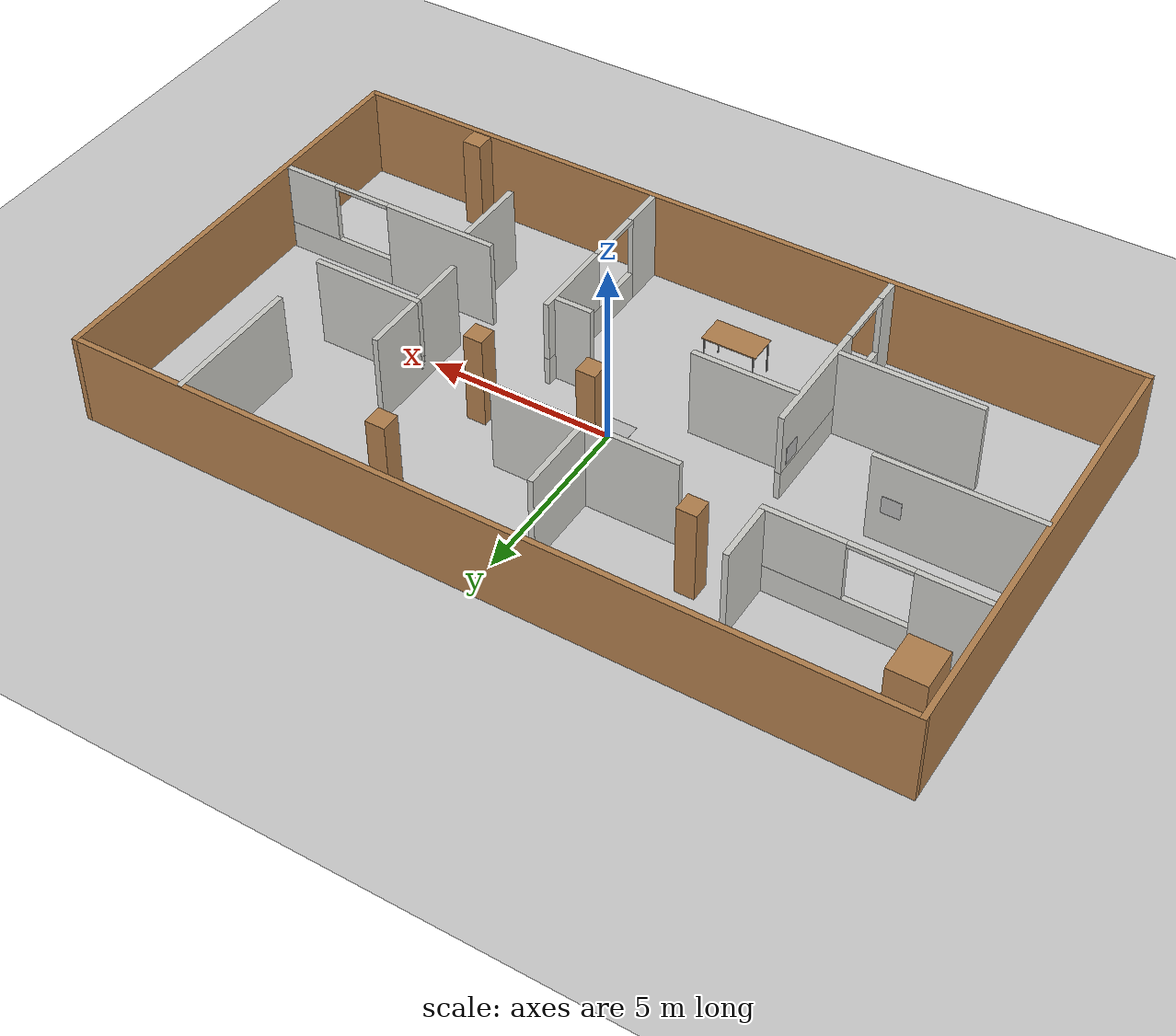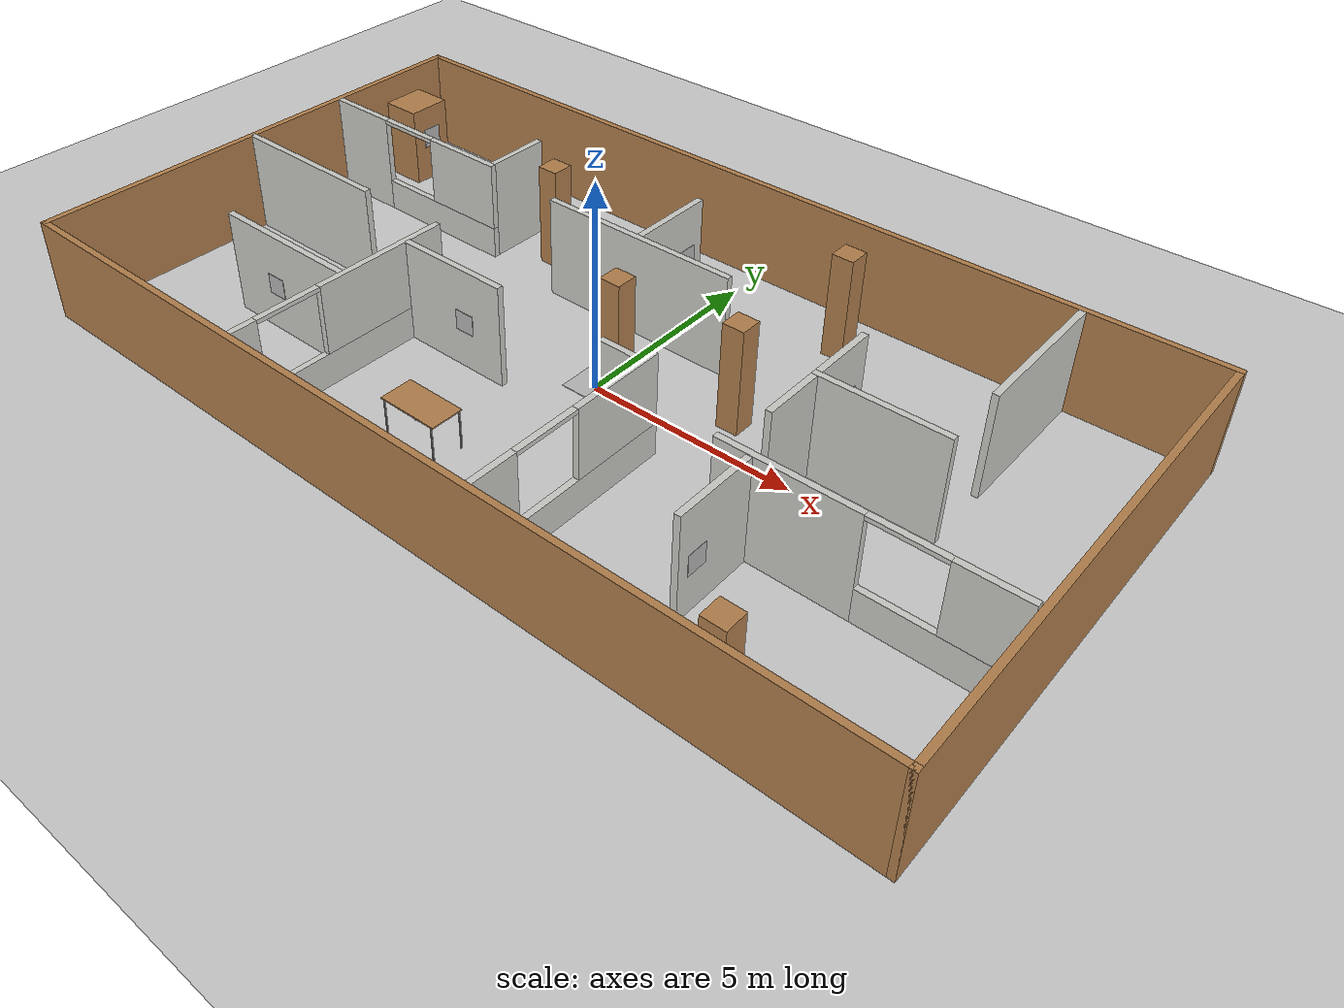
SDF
<sdf version="1.6">
 <world name="default">
  <light name="sun" type="directional">
   <pose>0 0 10 0 -0 0</pose>
   <diffuse>0.8 0.8 0.8 1</diffuse>
   <specular>0.2 0.2 0.2 1</specular>
   <attenuation>
    <range>1000</range>
    <constant>0.9</constant>
    <linear>0.01</linear>
    <quadratic>0.001</quadratic>
   </attenuation>
   <direction>-0.5 0.1 -0.9</direction>
  </light>
  <model name="ground_plane">
   <static>1</static>
   <link name="link">
    <collision name="collision">
     <geometry><plane><normal>0 0 1</normal><size>100 100</size></plane></geometry>
     <surface><friction><ode><mu>100</mu><mu2>50</mu2></ode></friction></surface>
    </collision>
    <visual name="visual">
     <cast_shadows>0</cast_shadows>
     <geometry><plane><normal>0 0 1</normal><size>100 100</size></plane></geometry>
     <material>
      <script><uri>file://media/materials/scripts/gazebo.material</uri><name>Gazebo/Grey</name></script>
     </material>
    </visual>
   </link>
  </model>
  <gravity>0 0 -9.8</gravity>
  <magnetic_field>6e-06 2.3e-05 -4.2e-05</magnetic_field>
  <atmosphere type="adiabatic"/>
  <plugin name="ros_interface_plugin" filename="librotors_gazebo_ros_interface_plugin.so"/>
  <physics name="default_physics" default="0" type="ode">
   <max_step_size>0.001</max_step_size>
   <real_time_factor>1</real_time_factor>
   <real_time_update_rate>1000</real_time_update_rate>
  </physics>
  <scene><ambient>0.4 0.4 0.4 1</ambient><background>0.7 0.7 0.7 1</background><shadows>1</shadows></scene>
  <spherical_coordinates>
   <surface_model>EARTH_WGS84</surface_model>
   <latitude_deg>0</latitude_deg>
   <longitude_deg>0</longitude_deg>
   <elevation>0</elevation>
   <heading_deg>0</heading_deg>
  </spherical_coordinates>
  <model name="20230316">
   <link name="Wall_14">
    <collision name="Wall_14_Collision">
     <geometry><box><size>12 0.15 2.5</size></box></geometry>
     <pose>0 0 1.25 0 -0 0</pose>
    </collision>
    <visual name="Wall_14_Visual">
     <pose>0 0 1.25 0 -0 0</pose>
     <geometry><box><size>12 0.15 2.5</size></box></geometry>
     <material>
      <script><uri>file://media/materials/scripts/gazebo.material</uri><name>Gazebo/Wood</name></script>
      <ambient>1 1 1 1</ambient>
     </material>
     <meta><layer>0</layer></meta>
    </visual>
    <pose>-10.925 0 0 0 -0 -1.5708</pose>
   </link>
   <link name="startflag">
    <pose>0 0 0.115 0 -0 0</pose>
    <inertial>
     <mass>0.39</mass>
     <inertia><ixx>0.00058</ixx><ixy>0</ixy><ixz>0</ixz><iyy>0.00058</iyy><iyz>0</iyz><izz>0.00019</izz></inertia>
    </inertial>
    <collision name="collision"><geometry><box><size>1 1 0.01</size></box></geometry></collision>
    <visual name="visual">
     <geometry><box><size>1 1 0.01</size></box></geometry>
     <material>
      <script>
       <uri>model://apriltag/materials/scripts</uri>
       <uri>model://apriltag/materials/textures</uri>
       <name>startflag/Diffuse</name>
      </script>
     </material>
    </visual>
   </link>
   <link name="Wall_15">
    <collision name="Wall_15_Collision">
     <geometry><box><size>22 0.15 2.5</size></box></geometry>
     <pose>0 0 1.25 0 -0 0</pose>
    </collision>
    <visual name="Wall_15_Visual">
     <pose>0 0 1.25 0 -0 0</pose>
     <geometry><box><size>22 0.15 2.5</size></box></geometry>
     <material>
      <script><uri>file://media/materials/scripts/gazebo.material</uri><name>Gazebo/Wood</name></script>
      <ambient>1 1 1 1</ambient>
     </material>
     <meta><layer>0</layer></meta>
    </visual>
    <pose>0 -5.925 0 0 -0 0</pose>
   </link>
   <link name="Wall_16">
    <collision name="Wall_16_Collision">
     <geometry><box><size>12 0.15 2.5</size></box></geometry>
     <pose>0 0 1.25 0 -0 0</pose>
    </collision>
    <visual name="Wall_16_Visual">
     <pose>0 0 1.25 0 -0 0</pose>
     <geometry><box><size>12 0.15 2.5</size></box></geometry>
     <material>
      <script><uri>file://media/materials/scripts/gazebo.material</uri><name>Gazebo/Wood</name></script>
      <ambient>1 1 1 1</ambient>
     </material>
     <meta><layer>0</layer></meta>
    </visual>
    <pose>10.925 0 0 0 -0 1.5708</pose>
   </link>
   <link name="Wall_17">
    <collision name="Wall_17_Collision">
     <geometry><box><size>22 0.15 2.5</size></box></geometry>
     <pose>0 0 1.25 0 -0 0</pose>
    </collision>
    <visual name="Wall_17_Visual">
     <pose>0 0 1.25 0 -0 0</pose>
     <geometry><box><size>22 0.15 2.5</size></box></geometry>
     <material>
      <script><uri>file://media/materials/scripts/gazebo.material</uri><name>Gazebo/Wood</name></script>
      <ambient>1 1 1 1</ambient>
     </material>
     <meta><layer>0</layer></meta>
    </visual>
    <pose>0 5.925 0 0 -0 3.14159</pose>
   </link>
   <link name="Wall_22">
    <collision name="Wall_22_Collision">
     <geometry><box><size>3.75 0.15 2.5</size></box></geometry>
     <pose>0 0 1.25 0 -0 0</pose>
    </collision>
    <visual name="Wall_22_Visual">
     <pose>0 0 1.25 0 -0 0</pose>
     <geometry><box><size>3.75 0.15 2.5</size></box></geometry>
     <material>
      <script><uri>file://media/materials/scripts/gazebo.material</uri><name>Gazebo/CeilingTiled</name></script>
      <ambient>0.921569 0.807843 0.615686 1</ambient>
     </material>
     <meta><layer>0</layer></meta>
    </visual>
    <pose>7.80154 4.0984 0 0 -0 -1.5708</pose>
   </link>
   <link name="Wall_25">
    <collision name="Wall_25_Collision">
     <geometry><box><size>3.25 0.15 2.5</size></box></geometry>
     <pose>0 0 1.25 0 -0 0</pose>
    </collision>
    <visual name="Wall_25_Visual">
     <pose>0 0 1.25 0 -0 0</pose>
     <geometry><box><size>3.25 0.15 2.5</size></box></geometry>
     <material>
      <script><uri>file://media/materials/scripts/gazebo.material</uri><name>Gazebo/CeilingTiled</name></script>
      <ambient>0.921569 0.807843 0.615686 1</ambient>
     </material>
     <meta><layer>0</layer></meta>
    </visual>
    <pose>4.95532 0.704173 0 0 -0 -1.5708</pose>
   </link>
   <link name="Wall_28">
    <collision name="Wall_28_Collision">
     <geometry><box><size>3 0.15 2.5</size></box></geometry>
     <pose>0 0 1.25 0 -0 0</pose>
    </collision>
    <visual name="Wall_28_Visual">
     <pose>0 0 1.25 0 -0 0</pose>
     <geometry><box><size>3 0.15 2.5</size></box></geometry>
     <material>
      <script><uri>file://media/materials/scripts/gazebo.material</uri><name>Gazebo/CeilingTiled</name></script>
      <ambient>0.921569 0.807843 0.615686 1</ambient>
     </material>
     <meta><layer>0</layer></meta>
    </visual>
    <pose>6.38032 0.631561 0 0 -0 0</pose>
   </link>
   <link name="Wall_30">
    <collision name="Wall_30_Collision">
     <geometry><box><size>2.25 0.15 2.5</size></box></geometry>
     <pose>0 0 1.25 0 -0 0</pose>
    </collision>
    <visual name="Wall_30_Visual">
     <pose>0 0 1.25 0 -0 0</pose>
     <geometry><box><size>2.25 0.15 2.5</size></box></geometry>
     <material>
      <script><uri>file://media/materials/scripts/gazebo.material</uri><name>Gazebo/CeilingTiled</name></script>
      <ambient>0.921569 0.807843 0.615686 1</ambient>
     </material>
     <meta><layer>0</layer></meta>
    </visual>
    <pose>-0.710524 3.27899 0 0 -0 -1.5708</pose>
   </link>
   <link name="Wall_32">
    <collision name="Wall_32_Collision">
     <geometry><box><size>5 0.15 2.5</size></box></geometry>
     <pose>0 0 1.25 0 -0 0</pose>
    </collision>
    <visual name="Wall_32_Visual">
     <pose>0 0 1.25 0 -0 0</pose>
     <geometry><box><size>5 0.15 2.5</size></box></geometry>
     <material>
      <script><uri>file://media/materials/scripts/gazebo.material</uri><name>Gazebo/CeilingTiled</name></script>
      <ambient>0.921569 0.807843 0.615686 1</ambient>
     </material>
     <meta><layer>0</layer></meta>
    </visual>
    <pose>-0.732742 2.20097 0 0 -0 0</pose>
   </link>
   <link name="Wall_41">
    <collision name="Wall_41_Collision">
     <geometry><box><size>4.25 0.15 2.5</size></box></geometry>
     <pose>0 0 1.25 0 -0 0</pose>
    </collision>
    <visual name="Wall_41_Visual">
     <pose>0 0 1.25 0 -0 0</pose>
     <geometry><box><size>4.25 0.15 2.5</size></box></geometry>
     <material>
      <script><uri>file://media/materials/scripts/gazebo.material</uri><name>Gazebo/CeilingTiled</name></script>
      <ambient>0.921569 0.807843 0.615686 1</ambient>
     </material>
     <meta><layer>0</layer></meta>
    </visual>
    <pose>-8.7952 -0.299446 0 0 -0 0</pose>
   </link>
   <link name="Wall_43">
    <collision name="Wall_43_Collision">
     <geometry><box><size>3.75 0.15 2.5</size></box></geometry>
     <pose>0 0 1.25 0 -0 0</pose>
    </collision>
    <visual name="Wall_43_Visual">
     <pose>0 0 1.25 0 -0 0</pose>
     <geometry><box><size>3.75 0.15 2.5</size></box></geometry>
     <material>
      <script><uri>file://media/materials/scripts/gazebo.material</uri><name>Gazebo/CeilingTiled</name></script>
      <ambient>0.921569 0.807843 0.615686 1</ambient>
     </material>
     <meta><layer>0</layer></meta>
    </visual>
    <pose>-6.33198 -2.95947 0 0 -0 0</pose>
   </link>
   <static>1</static>
  </model>
  <model name="window1">
   <pose>7.71672 -2.0654 0 0 -0 0</pose>
   <link name="Wall_0">
    <visual name="Wall_0_Visual_0">
     <pose>-1.54209 0 1.25 0 -0 0</pose>
     <geometry><box><size>3.11583 0.15 2.5</size></box></geometry>
     <material>
      <script><uri>file://media/materials/scripts/gazebo.material</uri><name>Gazebo/CeilingTiled</name></script>
      <ambient>1 0.764706 0.305882 1</ambient>
     </material>
     <meta><layer>0</layer></meta>
    </visual>
    <collision name="Wall_0_Collision_0">
     <geometry><box><size>3.11583 0.15 2.5</size></box></geometry>
     <pose>-1.54209 0 1.25 0 -0 0</pose>
    </collision>
    <visual name="Wall_0_Visual_1">
     <pose>1.55791 0 0.4 0 -0 0</pose>
     <geometry><box><size>3.08418 0.15 0.8</size></box></geometry>
     <material>
      <script><uri>file://media/materials/scripts/gazebo.material</uri><name>Gazebo/CeilingTiled</name></script>
      <ambient>1 0.764706 0.305882 1</ambient>
     </material>
     <meta><layer>0</layer></meta>
    </visual>
    <collision name="Wall_0_Collision_1">
     <geometry><box><size>3.08418 0.15 0.8</size></box></geometry>
     <pose>1.55791 0 0.4 0 -0 0</pose>
    </collision>
    <visual name="Wall_0_Visual_2">
     <pose>2.35791 0 1.65 0 -0 0</pose>
     <geometry><box><size>1.48418 0.15 1.7</size></box></geometry>
     <material>
      <script><uri>file://media/materials/scripts/gazebo.material</uri><name>Gazebo/CeilingTiled</name></script>
      <ambient>1 0.764706 0.305882 1</ambient>
     </material>
     <meta><layer>0</layer></meta>
    </visual>
    <collision name="Wall_0_Collision_2">
     <geometry><box><size>1.48418 0.15 1.7</size></box></geometry>
     <pose>2.35791 0 1.65 0 -0 0</pose>
    </collision>
    <visual name="Wall_0_Visual_3">
     <pose>0.815825 0 2.45 0 -0 0</pose>
     <geometry><box><size>1.6 0.15 0.1</size></box></geometry>
     <material>
      <script><uri>file://media/materials/scripts/gazebo.material</uri><name>Gazebo/CeilingTiled</name></script>
      <ambient>1 0.764706 0.305882 1</ambient>
     </material>
     <meta><layer>0</layer></meta>
    </visual>
    <collision name="Wall_0_Collision_3">
     <geometry><box><size>1.6 0.15 0.1</size></box></geometry>
     <pose>0.815825 0 2.45 0 -0 0</pose>
    </collision>
   </link>
   <static>1</static>
  </model>
  <model name="window2">
   <pose>2.26488 -3.35 0 0 -0 0</pose>
   <link name="Wall_2">
    <pose>0 -0 0 0 -0 1.5708</pose>
    <visual name="Wall_2_Visual_0">
     <pose>-1.94455 0 1.25 0 -0 0</pose>
     <geometry><box><size>1.1109 0.15 2.5</size></box></geometry>
     <material>
      <script><uri>file://media/materials/scripts/gazebo.material</uri><name>Gazebo/CeilingTiled</name></script>
      <ambient>1 0.764706 0.305882 1</ambient>
     </material>
     <meta><layer>0</layer></meta>
    </visual>
    <collision name="Wall_2_Collision_0">
     <geometry><box><size>1.1109 0.15 2.5</size></box></geometry>
     <pose>-1.94455 0 1.25 0 -0 0</pose>
    </collision>
    <visual name="Wall_2_Visual_1">
     <pose>0.555448 0 0.4 0 -0 0</pose>
     <geometry><box><size>3.8891 0.15 0.8</size></box></geometry>
     <material>
      <script><uri>file://media/materials/scripts/gazebo.material</uri><name>Gazebo/CeilingTiled</name></script>
      <ambient>1 0.764706 0.305882 1</ambient>
     </material>
     <meta><layer>0</layer></meta>
    </visual>
    <collision name="Wall_2_Collision_1">
     <geometry><box><size>3.8891 0.15 0.8</size></box></geometry>
     <pose>0.555448 0 0.4 0 -0 0</pose>
    </collision>
    <visual name="Wall_2_Visual_2">
     <pose>1.35545 0 1.65 0 -0 0</pose>
     <geometry><box><size>2.2891 0.15 1.7</size></box></geometry>
     <material>
      <script><uri>file://media/materials/scripts/gazebo.material</uri><name>Gazebo/CeilingTiled</name></script>
      <ambient>1 0.764706 0.305882 1</ambient>
     </material>
     <meta><layer>0</layer></meta>
    </visual>
    <collision name="Wall_2_Collision_2">
     <geometry><box><size>2.2891 0.15 1.7</size></box></geometry>
     <pose>1.35545 0 1.65 0 -0 0</pose>
    </collision>
    <visual name="Wall_2_Visual_3">
     <pose>-0.589104 0 2.45 0 -0 0</pose>
     <geometry><box><size>1.6 0.15 0.1</size></box></geometry>
     <material>
      <script><uri>file://media/materials/scripts/gazebo.material</uri><name>Gazebo/CeilingTiled</name></script>
      <ambient>1 0.764706 0.305882 1</ambient>
     </material>
     <meta><layer>0</layer></meta>
    </visual>
    <collision name="Wall_2_Collision_3">
     <geometry><box><size>1.6 0.15 0.1</size></box></geometry>
     <pose>-0.589104 0 2.45 0 -0 0</pose>
    </collision>
   </link>
   <static>1</static>
  </model>
  <model name="window3">
   <pose>-4.4 -3.05 0 0 -0 0</pose>
   <link name="Wall_0">
    <pose>0 0 0 0 -0 1.5708</pose>
    <visual name="Wall_0_Visual_0">
     <pose>-2.48617 0 1.25 0 -0 0</pose>
     <geometry><box><size>0.62765 0.15 2.5</size></box></geometry>
     <material>
      <script><uri>file://media/materials/scripts/gazebo.material</uri><name>Gazebo/CeilingTiled</name></script>
      <ambient>1 0.764706 0.305882 1</ambient>
     </material>
     <meta><layer>0</layer></meta>
    </visual>
    <collision name="Wall_0_Collision_0">
     <geometry><box><size>0.62765 0.15 2.5</size></box></geometry>
     <pose>-2.48617 0 1.25 0 -0 0</pose>
    </collision>
    <visual name="Wall_0_Visual_1">
     <pose>0.313825 0 0.4 0 -0 0</pose>
     <geometry><box><size>4.97235 0.15 0.8</size></box></geometry>
     <material>
      <script><uri>file://media/materials/scripts/gazebo.material</uri><name>Gazebo/CeilingTiled</name></script>
      <ambient>1 0.764706 0.305882 1</ambient>
     </material>
     <meta><layer>0</layer></meta>
    </visual>
    <collision name="Wall_0_Collision_1">
     <geometry><box><size>4.97235 0.15 0.8</size></box></geometry>
     <pose>0.313825 0 0.4 0 -0 0</pose>
    </collision>
    <visual name="Wall_0_Visual_2">
     <pose>1.11383 0 1.65 0 -0 0</pose>
     <geometry><box><size>3.37235 0.15 1.7</size></box></geometry>
     <material>
      <script><uri>file://media/materials/scripts/gazebo.material</uri><name>Gazebo/CeilingTiled</name></script>
      <ambient>1 0.764706 0.305882 1</ambient>
     </material>
     <meta><layer>0</layer></meta>
    </visual>
    <collision name="Wall_0_Collision_2">
     <geometry><box><size>3.37235 0.15 1.7</size></box></geometry>
     <pose>1.11383 0 1.65 0 -0 0</pose>
    </collision>
    <visual name="Wall_0_Visual_3">
     <pose>-1.37235 0 2.45 0 -0 0</pose>
     <geometry><box><size>1.6 0.15 0.1</size></box></geometry>
     <material>
      <script><uri>file://media/materials/scripts/gazebo.material</uri><name>Gazebo/CeilingTiled</name></script>
      <ambient>1 0.764706 0.305882 1</ambient>
     </material>
     <meta><layer>0</layer></meta>
    </visual>
    <collision name="Wall_0_Collision_3">
     <geometry><box><size>1.6 0.15 0.1</size></box></geometry>
     <pose>-1.37235 0 2.45 0 -0 0</pose>
    </collision>
   </link>
   <static>1</static>
  </model>
  <model name="window4">
   <pose>-8.1 2.44144 0 0 -0 0</pose>
   <link name="Wall_5">
    <visual name="Wall_5_Visual_0">
     <pose>-1.8495 0 1.25 0 -0 0</pose>
     <geometry><box><size>1.801 0.15 2.5</size></box></geometry>
     <material>
      <script><uri>file://media/materials/scripts/gazebo.material</uri><name>Gazebo/CeilingTiled</name></script>
      <ambient>1 0.764706 0.305882 1</ambient>
     </material>
     <meta><layer>0</layer></meta>
    </visual>
    <collision name="Wall_5_Collision_0">
     <geometry><box><size>1.801 0.15 2.5</size></box></geometry>
     <pose>-1.8495 0 1.25 0 -0 0</pose>
    </collision>
    <visual name="Wall_5_Visual_1">
     <pose>0.9005 0 0.4 0 -0 0</pose>
     <geometry><box><size>3.699 0.15 0.8</size></box></geometry>
     <material>
      <script><uri>file://media/materials/scripts/gazebo.material</uri><name>Gazebo/CeilingTiled</name></script>
      <ambient>1 0.764706 0.305882 1</ambient>
     </material>
     <meta><layer>0</layer></meta>
    </visual>
    <collision name="Wall_5_Collision_1">
     <geometry><box><size>3.699 0.15 0.8</size></box></geometry>
     <pose>0.9005 0 0.4 0 -0 0</pose>
    </collision>
    <visual name="Wall_5_Visual_2">
     <pose>1.7005 0 1.65 0 -0 0</pose>
     <geometry><box><size>2.099 0.15 1.7</size></box></geometry>
     <material>
      <script><uri>file://media/materials/scripts/gazebo.material</uri><name>Gazebo/CeilingTiled</name></script>
      <ambient>1 0.764706 0.305882 1</ambient>
     </material>
     <meta><layer>0</layer></meta>
    </visual>
    <collision name="Wall_5_Collision_2">
     <geometry><box><size>2.099 0.15 1.7</size></box></geometry>
     <pose>1.7005 0 1.65 0 -0 0</pose>
    </collision>
    <visual name="Wall_5_Visual_3">
     <pose>-0.149 0 2.45 0 -0 0</pose>
     <geometry><box><size>1.6 0.15 0.1</size></box></geometry>
     <material>
      <script><uri>file://media/materials/scripts/gazebo.material</uri><name>Gazebo/CeilingTiled</name></script>
      <ambient>1 0.764706 0.305882 1</ambient>
     </material>
     <meta><layer>0</layer></meta>
    </visual>
    <collision name="Wall_5_Collision_3">
     <geometry><box><size>1.6 0.15 0.1</size></box></geometry>
     <pose>-0.149 0 2.45 0 -0 0</pose>
    </collision>
   </link>
   <static>1</static>
  </model>
  <model name="add_wall1">
   <pose>5.42333 -3.1581 0 0 -0 0</pose>
   <link name="Wall_1">
    <collision name="Wall_1_Collision">
     <geometry><box><size>2 0.15 2.5</size></box></geometry>
     <pose>0 0 1.25 0 -0 0</pose>
    </collision>
    <visual name="Wall_1_Visual">
     <pose>0 0 1.25 0 -0 0</pose>
     <geometry><box><size>2 0.15 2.5</size></box></geometry>
     <material>
      <script><uri>file://media/materials/scripts/gazebo.material</uri><name>Gazebo/CeilingTiled</name></script>
      <ambient>1 0.764706 0.305882 1</ambient>
     </material>
     <meta><layer>0</layer></meta>
    </visual>
    <pose>0 0 0 0 -0 -1.5708</pose>
   </link>
   <static>1</static>
  </model>
  <model name="add_wall2">
   <pose>-5.43 3.31172 0 0 -0 0</pose>
   <link name="Wall_5">
    <collision name="Wall_5_Collision">
     <geometry><box><size>1.6 0.15 2.5</size></box></geometry>
     <pose>0 0 1.25 0 -0 0</pose>
    </collision>
    <visual name="Wall_5_Visual">
     <pose>0 0 1.25 0 -0 0</pose>
     <geometry><box><size>1.6 0.15 2.5</size></box></geometry>
     <material>
      <script><uri>file://media/materials/scripts/gazebo.material</uri><name>Gazebo/CeilingTiled</name></script>
      <ambient>1 0.764706 0.305882 1</ambient>
     </material>
     <meta><layer>0</layer></meta>
    </visual>
    <pose>0 0 0 0 -0 1.5708</pose>
   </link>
   <static>1</static>
  </model>
  <model name="add_wall3">
   <pose>-2.95 -1.2 0 0 -0 0</pose>
   <link name="Wall_9">
    <collision name="Wall_9_Collision">
     <geometry><box><size>2.8 0.15 2.5</size></box></geometry>
     <pose>0 0 1.25 0 -0 0</pose>
    </collision>
    <visual name="Wall_9_Visual">
     <pose>0 0 1.25 0 -0 0</pose>
     <geometry><box><size>2.8 0.15 2.5</size></box></geometry>
     <material>
      <script><uri>file://media/materials/scripts/gazebo.material</uri><name>Gazebo/CeilingTiled</name></script>
      <ambient>1 0.764706 0.305882 1</ambient>
     </material>
     <meta><layer>0</layer></meta>
    </visual>
   </link>
   <static>1</static>
  </model>
  <model name="add_wall4">
   <pose>1.69 -1.2 0 0 -0 0</pose>
   <link name="Wall_15">
    <collision name="Wall_15_Collision">
     <geometry><box><size>1 0.15 2.5</size></box></geometry>
     <pose>0 0 1.25 0 -0 0</pose>
    </collision>
    <visual name="Wall_15_Visual">
     <pose>0 0 1.25 0 -0 0</pose>
     <geometry><box><size>1 0.15 2.5</size></box></geometry>
     <material>
      <script><uri>file://media/materials/scripts/gazebo.material</uri><name>Gazebo/CeilingTiled</name></script>
      <ambient>1 0.764706 0.305882 1</ambient>
     </material>
     <meta><layer>0</layer></meta>
    </visual>
    <pose>0 0 0 0 -0 3.14159</pose>
   </link>
   <static>1</static>
  </model>
  <model name="unit_box">
   <pose>-10.0316 4.25425 1.01795 -2e-06 -0 0.000279</pose>
   <link name="link">
    <inertial>
     <mass>1</mass>
     <inertia>
      <ixx>0.166667</ixx>
      <ixy>0</ixy>
      <ixz>0</ixz>
      <iyy>0.166667</iyy>
      <iyz>0</iyz>
      <izz>0.166667</izz>
     </inertia>
    </inertial>
    <collision name="collision"><geometry><box><size>1 1.11313 2.03591</size></box></geometry></collision>
    <visual name="visual">
     <geometry><box><size>1 1.11313 2.03591</size></box></geometry>
     <material>
      <script><uri>file://media/materials/scripts/gazebo.material</uri><name>Gazebo/Wood</name></script>
     </material>
    </visual>
   </link>
   <static>0</static>
  </model>
  <model name="table">
   <static>0</static>
   <link name="link">
    <collision name="surface">
     <pose>0 0 1 0 -0 0</pose>
     <geometry><box><size>1.5 0.8 0.03</size></box></geometry>
     <surface><friction><ode><mu>0.6</mu><mu2>0.6</mu2></ode></friction></surface>
    </collision>
    <visual name="visual1">
     <pose>0 0 1 0 -0 0</pose>
     <geometry><box><size>1.5 0.8 0.03</size></box></geometry>
     <material>
      <script><uri>file://media/materials/scripts/gazebo.material</uri><name>Gazebo/Wood</name></script>
     </material>
    </visual>
    <collision name="front_left_leg">
     <pose>0.68 0.38 0.5 0 -0 0</pose>
     <geometry><cylinder><radius>0.02</radius><length>1</length></cylinder></geometry>
    </collision>
    <visual name="front_left_leg">
     <pose>0.68 0.38 0.5 0 -0 0</pose>
     <geometry><cylinder><radius>0.02</radius><length>1</length></cylinder></geometry>
     <material>
      <script><uri>file://media/materials/scripts/gazebo.material</uri><name>Gazebo/Grey</name></script>
     </material>
    </visual>
    <collision name="front_right_leg">
     <pose>0.68 -0.38 0.5 0 -0 0</pose>
     <geometry><cylinder><radius>0.02</radius><length>1</length></cylinder></geometry>
    </collision>
    <visual name="front_right_leg">
     <pose>0.68 -0.38 0.5 0 -0 0</pose>
     <geometry><cylinder><radius>0.02</radius><length>1</length></cylinder></geometry>
     <material>
      <script><uri>file://media/materials/scripts/gazebo.material</uri><name>Gazebo/Grey</name></script>
     </material>
    </visual>
    <collision name="back_right_leg">
     <pose>-0.68 -0.38 0.5 0 -0 0</pose>
     <geometry><cylinder><radius>0.02</radius><length>1</length></cylinder></geometry>
    </collision>
    <visual name="back_right_leg">
     <pose>-0.68 -0.38 0.5 0 -0 0</pose>
     <geometry><cylinder><radius>0.02</radius><length>1</length></cylinder></geometry>
     <material>
      <script><uri>file://media/materials/scripts/gazebo.material</uri><name>Gazebo/Grey</name></script>
     </material>
    </visual>
    <collision name="back_left_leg">
     <pose>-0.68 0.38 0.5 0 -0 0</pose>
     <geometry><cylinder><radius>0.02</radius><length>1</length></cylinder></geometry>
    </collision>
    <visual name="back_left_leg">
     <pose>-0.68 0.38 0.5 0 -0 0</pose>
     <geometry><cylinder><radius>0.02</radius><length>1</length></cylinder></geometry>
     <material>
      <script><uri>file://media/materials/scripts/gazebo.material</uri><name>Gazebo/Grey</name></script>
     </material>
    </visual>
   </link>
   <pose>-1.40584 -3.66513 0 0 -0 0</pose>
  </model>
  <model name="unit_box_0">
   <pose>0.093112 0.582984 1.29125 -1e-06 -0 -7.4e-05</pose>
   <link name="link">
    <inertial>
     <mass>1</mass>
     <inertia>
      <ixx>0.166667</ixx>
      <ixy>0</ixy>
      <ixz>0</ixz>
      <iyy>0.166667</iyy>
      <iyz>0</iyz>
      <izz>0.166667</izz>
     </inertia>
    </inertial>
    <collision name="collision"><geometry><box><size>0.52404 0.528613 2.5825</size></box></geometry></collision>
    <visual name="visual">
     <geometry><box><size>0.52404 0.528613 2.5825</size></box></geometry>
     <material>
      <script><uri>file://media/materials/scripts/gazebo.material</uri><name>Gazebo/Wood</name></script>
     </material>
    </visual>
   </link>
   <static>0</static>
  </model>
  <model name="unit_box_0_clone">
   <pose>2.97329 0.937418 1.29125 2e-06 1e-06 -0.000193</pose>
   <link name="link">
    <inertial>
     <mass>1</mass>
     <inertia>
      <ixx>0.166667</ixx>
      <ixy>0</ixy>
      <ixz>0</ixz>
      <iyy>0.166667</iyy>
      <iyz>0</iyz>
      <izz>0.166667</izz>
     </inertia>
    </inertial>
    <collision name="collision"><geometry><box><size>0.52404 0.528614 2.5825</size></box></geometry></collision>
    <visual name="visual">
     <geometry><box><size>0.52404 0.528614 2.5825</size></box></geometry>
     <material>
      <script><uri>file://media/materials/scripts/gazebo.material</uri><name>Gazebo/Wood</name></script>
     </material>
    </visual>
   </link>
   <static>0</static>
  </model>
  <model name="unit_box_0_clone_0">
   <pose>3.17619 4.52057 1.29125 2e-06 -1e-06 -0.000188</pose>
   <link name="link">
    <inertial>
     <mass>1</mass>
     <inertia>
      <ixx>0.166667</ixx>
      <ixy>0</ixy>
      <ixz>0</ixz>
      <iyy>0.166667</iyy>
      <iyz>0</iyz>
      <izz>0.166667</izz>
     </inertia>
    </inertial>
    <collision name="collision"><geometry><box><size>0.52404 0.528614 2.5825</size></box></geometry></collision>
    <visual name="visual">
     <geometry><box><size>0.52404 0.528614 2.5825</size></box></geometry>
     <material>
      <script><uri>file://media/materials/scripts/gazebo.material</uri><name>Gazebo/Wood</name></script>
     </material>
    </visual>
   </link>
   <static>0</static>
  </model>
  <model name="unit_box_0_clone_2">
   <pose>-4.1386 3.27052 1.29125 -0 1e-06 -0.000174</pose>
   <link name="link">
    <inertial>
     <mass>1</mass>
     <inertia>
      <ixx>0.166667</ixx>
      <ixy>0</ixy>
      <ixz>0</ixz>
      <iyy>0.166667</iyy>
      <iyz>0</iyz>
      <izz>0.166667</izz>
     </inertia>
    </inertial>
    <collision name="collision"><geometry><box><size>0.52404 0.528614 2.5825</size></box></geometry></collision>
    <visual name="visual">
     <geometry><box><size>0.52404 0.528614 2.5825</size></box></geometry>
     <material>
      <script><uri>file://media/materials/scripts/gazebo.material</uri><name>Gazebo/Wood</name></script>
     </material>
    </visual>
   </link>
   <static>0</static>
  </model>
  <model name="unit_box_0_clone_3">
   <pose>7.34572 -5.47091 1.29125 -5e-06 -6e-06 -0.000178</pose>
   <link name="link">
    <inertial>
     <mass>1</mass>
     <inertia>
      <ixx>0.166667</ixx>
      <ixy>0</ixy>
      <ixz>0</ixz>
      <iyy>0.166667</iyy>
      <iyz>0</iyz>
      <izz>0.166667</izz>
     </inertia>
    </inertial>
    <collision name="collision"><geometry><box><size>0.52404 0.528614 2.5825</size></box></geometry></collision>
    <visual name="visual">
     <geometry><box><size>0.52404 0.528614 2.5825</size></box></geometry>
     <material>
      <script><uri>file://media/materials/scripts/gazebo.material</uri><name>Gazebo/Wood</name></script>
     </material>
    </visual>
   </link>
   <static>0</static>
  </model>
  <model name="static_apriltag_0">
   <link name="link">
    <pose>0 0 0 0 1.57 0</pose>
    <inertial>
     <mass>0.39</mass>
     <inertia><ixx>0.00058</ixx><ixy>0</ixy><ixz>0</ixz><iyy>0.00058</iyy><iyz>0</iyz><izz>0.00019</izz></inertia>
    </inertial>
    <collision name="collision"><geometry><box><size>0.5 0.5 0.01</size></box></geometry></collision>
    <visual name="visual">
     <geometry><box><size>0.5 0.5 0.01</size></box></geometry>
     <material>
      <script>
       <uri>model://apriltag/materials/scripts</uri>
       <uri>model://apriltag/materials/textures</uri>
       <name>apriltag/Diffuse0</name>
      </script>
     </material>
    </visual>
    <gravity>0</gravity>
   </link>
   <pose>5.05 1.77055 1.2 0 -0 0</pose>
   <static>0</static>
   <pose>1.90787 0.108649 0 0 -0 0</pose>
  </model>
  <model name="static_apriltag_1">
   <link name="link">
    <pose>0 0 0 0 1.57 0</pose>
    <inertial>
     <mass>0.39</mass>
     <inertia><ixx>0.00058</ixx><ixy>0</ixy><ixz>0</ixz><iyy>0.00058</iyy><iyz>0</iyz><izz>0.00019</izz></inertia>
    </inertial>
    <collision name="collision"><geometry><box><size>0.5 0.5 0.01</size></box></geometry></collision>
    <visual name="visual">
     <geometry><box><size>0.5 0.5 0.01</size></box></geometry>
     <material>
      <script>
       <uri>model://apriltag/materials/scripts</uri>
       <uri>model://apriltag/materials/textures</uri>
       <name>apriltag/Diffuse1</name>
      </script>
     </material>
    </visual>
    <gravity>0</gravity>
   </link>
   <pose>-0.62 3.89293 1.2 0 -0 0</pose>
   <static>0</static>
   <pose>1.36256 0.459264 0 0 -0 0</pose>
  </model>
  <model name="static_apriltag_2">
   <link name="link">
    <pose>0 0 0 0 1.57 0</pose>
    <inertial>
     <mass>0.39</mass>
     <inertia><ixx>0.00058</ixx><ixy>0</ixy><ixz>0</ixz><iyy>0.00058</iyy><iyz>0</iyz><izz>0.00019</izz></inertia>
    </inertial>
    <collision name="collision"><geometry><box><size>0.5 0.5 0.01</size></box></geometry></collision>
    <visual name="visual">
     <geometry><box><size>0.5 0.5 0.01</size></box></geometry>
     <material>
      <script>
       <uri>model://apriltag/materials/scripts</uri>
       <uri>model://apriltag/materials/textures</uri>
       <name>apriltag/Diffuse2</name>
      </script>
     </material>
    </visual>
    <gravity>0</gravity>
   </link>
   <pose>-4.5 -0.696606 1.2 0 -0 0</pose>
   <static>0</static>
   <pose>0.80811 0.829943 0 0 -0 0</pose>
  </model>
  <model name="static_apriltag_3">
   <link name="link">
    <pose>0 0 0 -1.57 1.57 -0</pose>
    <inertial>
     <mass>0.39</mass>
     <inertia><ixx>0.00058</ixx><ixy>0</ixy><ixz>0</ixz><iyy>0.00058</iyy><iyz>0</iyz><izz>0.00019</izz></inertia>
    </inertial>
    <collision name="collision"><geometry><box><size>0.5 0.5 0.01</size></box></geometry></collision>
    <visual name="visual">
     <geometry><box><size>0.5 0.5 0.01</size></box></geometry>
     <material>
      <script>
       <uri>model://apriltag/materials/scripts</uri>
       <uri>model://apriltag/materials/textures</uri>
       <name>apriltag/Diffuse3</name>
      </script>
     </material>
    </visual>
    <gravity>0</gravity>
   </link>
   <pose>-2.58741 -1.3 1.2 0 -0 0</pose>
   <static>0</static>
   <pose>3.65849 3.02317 0 0 -0 0</pose>
  </model>
  <model name="static_apriltag_4">
   <link name="link">
    <pose>0 0 0 0 1.57 0</pose>
    <inertial>
     <mass>0.39</mass>
     <inertia><ixx>0.00058</ixx><ixy>0</ixy><ixz>0</ixz><iyy>0.00058</iyy><iyz>0</iyz><izz>0.00019</izz></inertia>
    </inertial>
    <collision name="collision"><geometry><box><size>0.5 0.5 0.01</size></box></geometry></collision>
    <visual name="visual">
     <geometry><box><size>0.5 0.5 0.01</size></box></geometry>
     <material>
      <script>
       <uri>model://apriltag/materials/scripts</uri>
       <uri>model://apriltag/materials/textures</uri>
       <name>apriltag/Diffuse4</name>
      </script>
     </material>
    </visual>
    <gravity>0</gravity>
   </link>
   <pose>5.52 -3.6631 1.2 0 -0 0</pose>
   <static>0</static>
   <pose>3.93537 3.29316 0 0 -0 0</pose>
  </model>
  <model name="static_apriltag_5">
   <link name="link">
    <pose>0 0 0 -1.57 1.57 -0</pose>
    <inertial>
     <mass>0.39</mass>
     <inertia><ixx>0.00058</ixx><ixy>0</ixy><ixz>0</ixz><iyy>0.00058</iyy><iyz>0</iyz><izz>0.00019</izz></inertia>
    </inertial>
    <collision name="collision"><geometry><box><size>0.5 0.5 0.01</size></box></geometry></collision>
    <visual name="visual">
     <geometry><box><size>0.5 0.5 0.01</size></box></geometry>
     <material>
      <script>
       <uri>model://apriltag/materials/scripts</uri>
       <uri>model://apriltag/materials/textures</uri>
       <name>apriltag/Diffuse5</name>
      </script>
     </material>
    </visual>
    <gravity>0</gravity>
   </link>
   <pose>-6.73549 -3.05 1.2 0 -0 0</pose>
   <static>0</static>
   <pose>5.04082 3.71574 0 0 -0 0</pose>
  </model>
  <model name="static_apriltag_6">
   <link name="link">
    <pose>0 0 0 -1.57 1.57 -0</pose>
    <inertial>
     <mass>0.39</mass>
     <inertia><ixx>0.00058</ixx><ixy>0</ixy><ixz>0</ixz><iyy>0.00058</iyy><iyz>0</iyz><izz>0.00019</izz></inertia>
    </inertial>
    <collision name="collision"><geometry><box><size>0.5 0.5 0.01</size></box></geometry></collision>
    <visual name="visual">
     <geometry><box><size>0.5 0.5 0.01</size></box></geometry>
     <material>
      <script>
       <uri>model://apriltag/materials/scripts</uri>
       <uri>model://apriltag/materials/textures</uri>
       <name>apriltag/Diffuse6</name>
      </script>
     </material>
    </visual>
    <gravity>0</gravity>
   </link>
   <pose>-7.2805 -0.2 1.2 0 -0 0</pose>
   <static>0</static>
   <pose>3.43144 4.34187 0 0 -0 0</pose>
  </model>
  <model name="static_apriltag_7">
   <link name="link">
    <pose>0 0 0 0 1.57 0</pose>
    <inertial>
     <mass>0.39</mass>
     <inertia><ixx>0.00058</ixx><ixy>0</ixy><ixz>0</ixz><iyy>0.00058</iyy><iyz>0</iyz><izz>0.00019</izz></inertia>
    </inertial>
    <collision name="collision"><geometry><box><size>0.5 0.5 0.01</size></box></geometry></collision>
    <visual name="visual">
     <geometry><box><size>0.5 0.5 0.01</size></box></geometry>
     <material>
      <script>
       <uri>model://apriltag/materials/scripts</uri>
       <uri>model://apriltag/materials/textures</uri>
       <name>apriltag/Diffuse7</name>
      </script>
     </material>
    </visual>
    <gravity>0</gravity>
   </link>
   <pose>-9.5 4.25411 1.2 0 -0 0</pose>
   <static>0</static>
   <pose>3.12393 4.47604 0 0 -0 0</pose>
  </model>
 </world>
</sdf>
